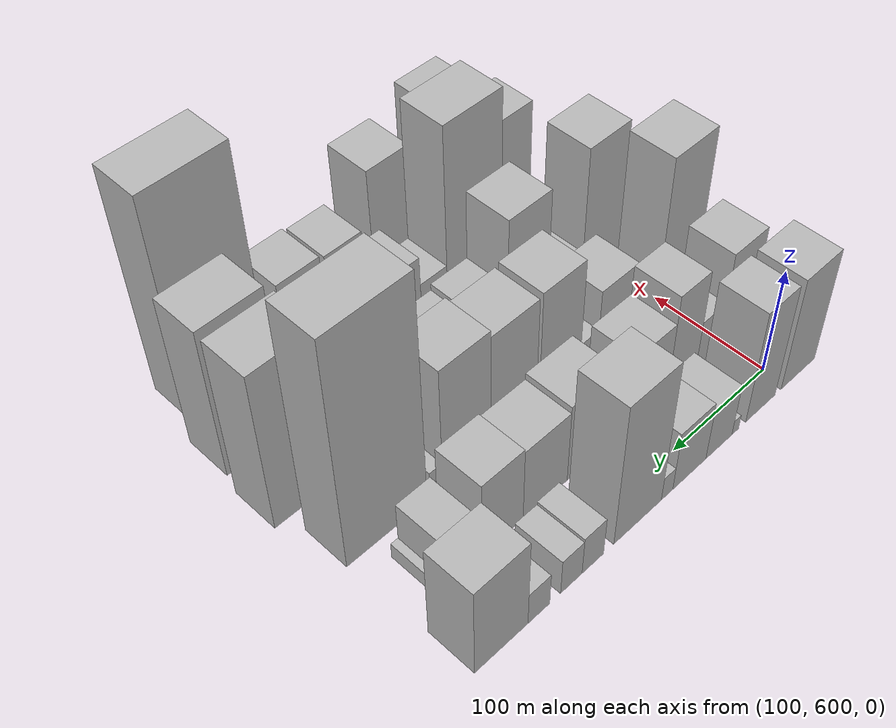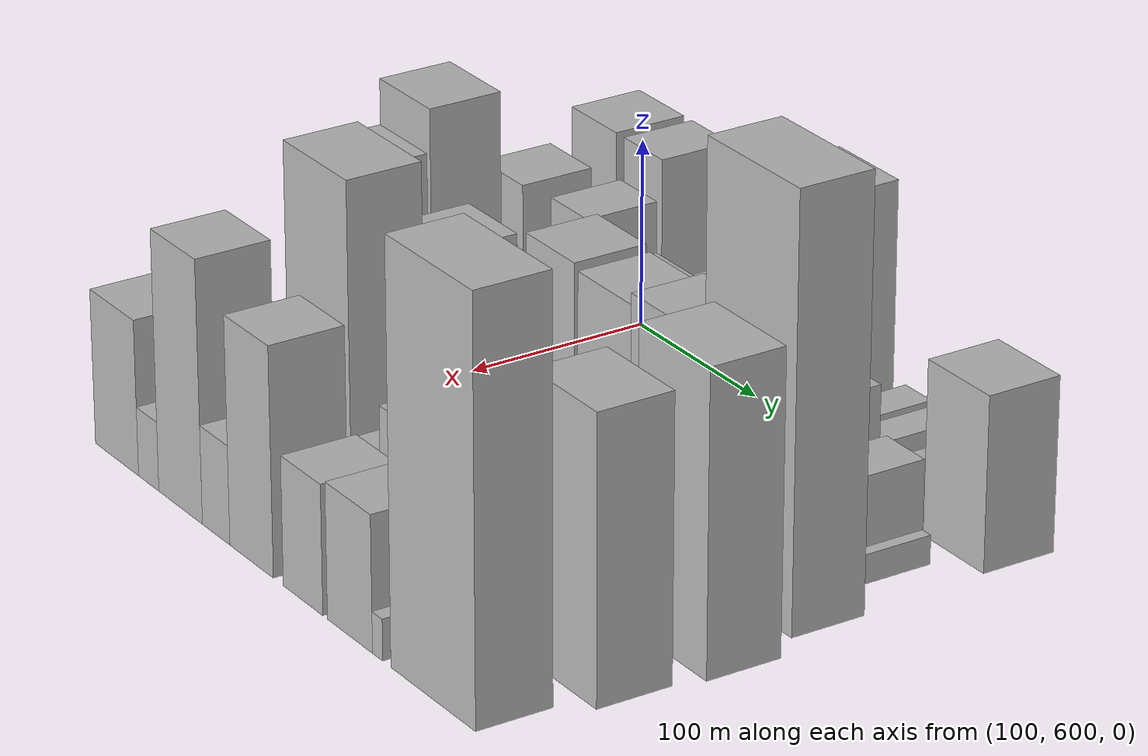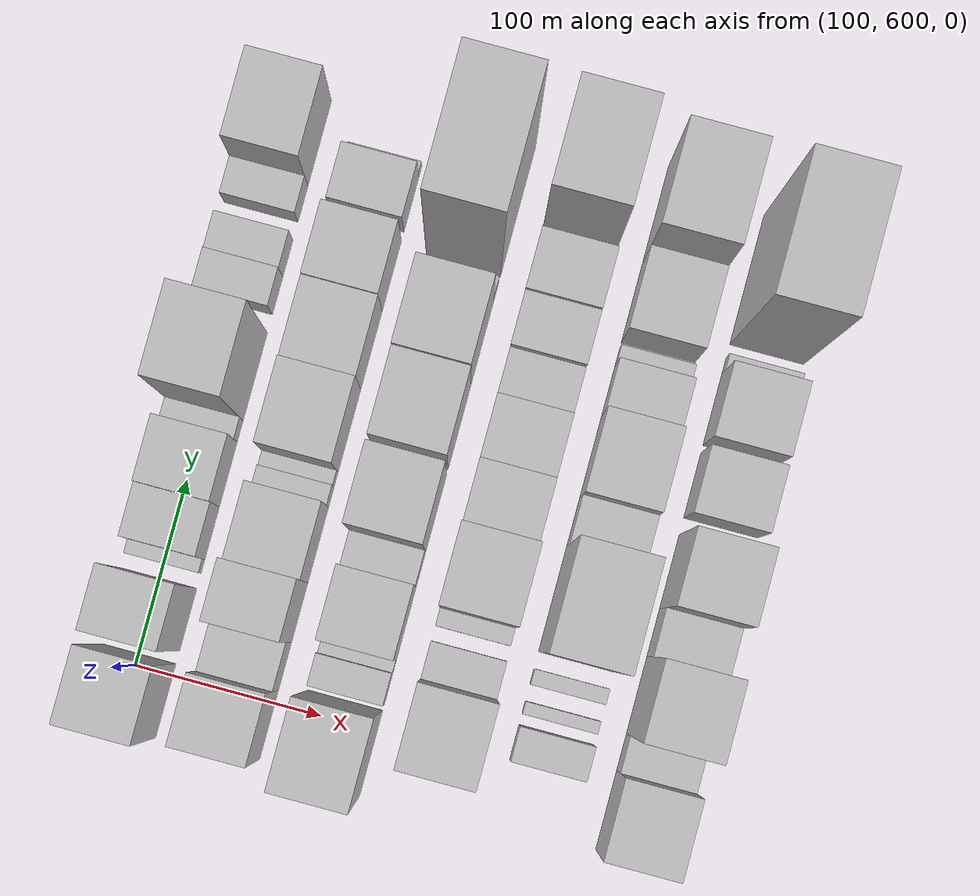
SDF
<sdf version="1.6">
 <world name="default">
  <model name="building_44">
   <static>1</static>
   <pose>100.0000 586.5596 0 0.000000 0.000000 0.000000</pose>
   <link name="link">
    <pose>0 0 55.50 0 0 0</pose>
    <collision name="collision"><geometry><box><size>40.0000 39.7444 111.0000</size></box></geometry></collision>
    <visual name="visual">
     <cast_shadows>0</cast_shadows>
     <geometry><box><size>40.0000 39.7444 111.0000</size></box></geometry>
     <material>
      <script>
       <uri>model://HANNAS_wall/materials/scripts</uri>
       <uri>model://HANNAS_wall/materials/textures</uri>
       <name>vrc/HANNAS_wall</name>
      </script>
     </material>
    </visual>
   </link>
  </model>
  <model name="building_45">
   <static>1</static>
   <pose>100.0000 630.1969 0 0.000000 0.000000 0.000000</pose>
   <link name="link">
    <pose>0 0 55.50 0 0 0</pose>
    <collision name="collision"><geometry><box><size>40.0000 33.5303 111.0000</size></box></geometry></collision>
    <visual name="visual">
     <cast_shadows>0</cast_shadows>
     <geometry><box><size>40.0000 33.5303 111.0000</size></box></geometry>
     <material>
      <script>
       <uri>model://HANNAS_wall/materials/scripts</uri>
       <uri>model://HANNAS_wall/materials/textures</uri>
       <name>vrc/HANNAS_wall</name>
      </script>
     </material>
    </visual>
   </link>
  </model>
  <model name="building_46">
   <static>1</static>
   <pose>100.0000 658.6842 0 0.000000 0.000000 0.000000</pose>
   <link name="link">
    <pose>0 0 7.50 0 0 0</pose>
    <collision name="collision"><geometry><box><size>40.0000 7.4443 15.0000</size></box></geometry></collision>
    <visual name="visual">
     <cast_shadows>0</cast_shadows>
     <geometry><box><size>40.0000 7.4443 15.0000</size></box></geometry>
     <material>
      <script>
       <uri>model://HANNAS_wall/materials/scripts</uri>
       <uri>model://HANNAS_wall/materials/textures</uri>
       <name>vrc/HANNAS_wall</name>
      </script>
     </material>
    </visual>
   </link>
  </model>
  <model name="building_47">
   <static>1</static>
   <pose>100.0000 676.6349 0 0.000000 0.000000 0.000000</pose>
   <link name="link">
    <pose>0 0 27.00 0 0 0</pose>
    <collision name="collision"><geometry><box><size>40.0000 28.4571 54.0000</size></box></geometry></collision>
    <visual name="visual">
     <cast_shadows>0</cast_shadows>
     <geometry><box><size>40.0000 28.4571 54.0000</size></box></geometry>
     <material>
      <script>
       <uri>model://HANNAS_wall/materials/scripts</uri>
       <uri>model://HANNAS_wall/materials/textures</uri>
       <name>vrc/HANNAS_wall</name>
      </script>
     </material>
    </visual>
   </link>
  </model>
  <model name="building_48">
   <static>1</static>
   <pose>100.0000 708.3799 0 0.000000 0.000000 0.000000</pose>
   <link name="link">
    <pose>0 0 30.00 0 0 0</pose>
    <collision name="collision"><geometry><box><size>40.0000 35.0328 60.0000</size></box></geometry></collision>
    <visual name="visual">
     <cast_shadows>0</cast_shadows>
     <geometry><box><size>40.0000 35.0328 60.0000</size></box></geometry>
     <material>
      <script>
       <uri>model://HANNAS_wall/materials/scripts</uri>
       <uri>model://HANNAS_wall/materials/textures</uri>
       <name>vrc/HANNAS_wall</name>
      </script>
     </material>
    </visual>
   </link>
  </model>
  <model name="building_49">
   <static>1</static>
   <pose>100.0000 731.8077 0 0.000000 0.000000 0.000000</pose>
   <link name="link">
    <pose>0 0 12.00 0 0 0</pose>
    <collision name="collision"><geometry><box><size>40.0000 11.8228 24.0000</size></box></geometry></collision>
    <visual name="visual">
     <cast_shadows>0</cast_shadows>
     <geometry><box><size>40.0000 11.8228 24.0000</size></box></geometry>
     <material>
      <script>
       <uri>model://HANNAS_wall/materials/scripts</uri>
       <uri>model://HANNAS_wall/materials/textures</uri>
       <name>vrc/HANNAS_wall</name>
      </script>
     </material>
    </visual>
   </link>
  </model>
  <model name="building_50">
   <static>1</static>
   <pose>100.0000 761.4835 0 0.000000 0.000000 0.000000</pose>
   <link name="link">
    <pose>0 0 70.50 0 0 0</pose>
    <collision name="collision"><geometry><box><size>40.0000 47.5287 141.0000</size></box></geometry></collision>
    <visual name="visual">
     <cast_shadows>0</cast_shadows>
     <geometry><box><size>40.0000 47.5287 141.0000</size></box></geometry>
     <material>
      <script>
       <uri>model://HANNAS_wall/materials/scripts</uri>
       <uri>model://HANNAS_wall/materials/textures</uri>
       <name>vrc/HANNAS_wall</name>
      </script>
     </material>
    </visual>
   </link>
  </model>
  <model name="building_51">
   <static>1</static>
   <pose>100.0000 805.5571 0 0.000000 0.000000 0.000000</pose>
   <link name="link">
    <pose>0 0 19.50 0 0 0</pose>
    <collision name="collision"><geometry><box><size>40.0000 20.6185 39.0000</size></box></geometry></collision>
    <visual name="visual">
     <cast_shadows>0</cast_shadows>
     <geometry><box><size>40.0000 20.6185 39.0000</size></box></geometry>
     <material>
      <script>
       <uri>model://HANNAS_wall/materials/scripts</uri>
       <uri>model://HANNAS_wall/materials/textures</uri>
       <name>vrc/HANNAS_wall</name>
      </script>
     </material>
    </visual>
   </link>
  </model>
  <model name="building_52">
   <static>1</static>
   <pose>100.0000 825.8743 0 0.000000 0.000000 0.000000</pose>
   <link name="link">
    <pose>0 0 18.00 0 0 0</pose>
    <collision name="collision"><geometry><box><size>40.0000 20.0160 36.0000</size></box></geometry></collision>
    <visual name="visual">
     <cast_shadows>0</cast_shadows>
     <geometry><box><size>40.0000 20.0160 36.0000</size></box></geometry>
     <material>
      <script>
       <uri>model://HANNAS_wall/materials/scripts</uri>
       <uri>model://HANNAS_wall/materials/textures</uri>
       <name>vrc/HANNAS_wall</name>
      </script>
     </material>
    </visual>
   </link>
  </model>
  <model name="building_53">
   <static>1</static>
   <pose>100.0000 855.7499 0 0.000000 0.000000 0.000000</pose>
   <link name="link">
    <pose>0 0 16.50 0 0 0</pose>
    <collision name="collision"><geometry><box><size>40.0000 19.7351 33.0000</size></box></geometry></collision>
    <visual name="visual">
     <cast_shadows>0</cast_shadows>
     <geometry><box><size>40.0000 19.7351 33.0000</size></box></geometry>
     <material>
      <script>
       <uri>model://HANNAS_wall/materials/scripts</uri>
       <uri>model://HANNAS_wall/materials/textures</uri>
       <name>vrc/HANNAS_wall</name>
      </script>
     </material>
    </visual>
   </link>
  </model>
  <model name="building_54">
   <static>1</static>
   <pose>100.0000 888.9737 0 0.000000 0.000000 0.000000</pose>
   <link name="link">
    <pose>0 0 45.00 0 0 0</pose>
    <collision name="collision"><geometry><box><size>40.0000 46.7126 90.0000</size></box></geometry></collision>
    <visual name="visual">
     <cast_shadows>0</cast_shadows>
     <geometry><box><size>40.0000 46.7126 90.0000</size></box></geometry>
     <material>
      <script>
       <uri>model://HANNAS_wall/materials/scripts</uri>
       <uri>model://HANNAS_wall/materials/textures</uri>
       <name>vrc/HANNAS_wall</name>
      </script>
     </material>
    </visual>
   </link>
  </model>
  <model name="building_98">
   <static>1</static>
   <pose>155.0000 588.6050 0 0.000000 0.000000 0.000000</pose>
   <link name="link">
    <pose>0 0 48.00 0 0 0</pose>
    <collision name="collision"><geometry><box><size>40.0000 37.1389 96.0000</size></box></geometry></collision>
    <visual name="visual">
     <cast_shadows>0</cast_shadows>
     <geometry><box><size>40.0000 37.1389 96.0000</size></box></geometry>
     <material>
      <script>
       <uri>model://HANNAS_wall/materials/scripts</uri>
       <uri>model://HANNAS_wall/materials/textures</uri>
       <name>vrc/HANNAS_wall</name>
      </script>
     </material>
    </visual>
   </link>
  </model>
  <model name="building_99">
   <static>1</static>
   <pose>155.0000 620.0133 0 0.000000 0.000000 0.000000</pose>
   <link name="link">
    <pose>0 0 24.00 0 0 0</pose>
    <collision name="collision"><geometry><box><size>40.0000 25.6776 48.0000</size></box></geometry></collision>
    <visual name="visual">
     <cast_shadows>0</cast_shadows>
     <geometry><box><size>40.0000 25.6776 48.0000</size></box></geometry>
     <material>
      <script>
       <uri>model://HANNAS_wall/materials/scripts</uri>
       <uri>model://HANNAS_wall/materials/textures</uri>
       <name>vrc/HANNAS_wall</name>
      </script>
     </material>
    </visual>
   </link>
  </model>
  <model name="building_100">
   <static>1</static>
   <pose>155.0000 648.8126 0 0.000000 0.000000 0.000000</pose>
   <link name="link">
    <pose>0 0 49.50 0 0 0</pose>
    <collision name="collision"><geometry><box><size>40.0000 31.9209 99.0000</size></box></geometry></collision>
    <visual name="visual">
     <cast_shadows>0</cast_shadows>
     <geometry><box><size>40.0000 31.9209 99.0000</size></box></geometry>
     <material>
      <script>
       <uri>model://HANNAS_wall/materials/scripts</uri>
       <uri>model://HANNAS_wall/materials/textures</uri>
       <name>vrc/HANNAS_wall</name>
      </script>
     </material>
    </visual>
   </link>
  </model>
  <model name="building_101">
   <static>1</static>
   <pose>155.0000 685.0090 0 0.000000 0.000000 0.000000</pose>
   <link name="link">
    <pose>0 0 36.00 0 0 0</pose>
    <collision name="collision"><geometry><box><size>40.0000 40.4718 72.0000</size></box></geometry></collision>
    <visual name="visual">
     <cast_shadows>0</cast_shadows>
     <geometry><box><size>40.0000 40.4718 72.0000</size></box></geometry>
     <material>
      <script>
       <uri>model://HANNAS_wall/materials/scripts</uri>
       <uri>model://HANNAS_wall/materials/textures</uri>
       <name>vrc/HANNAS_wall</name>
      </script>
     </material>
    </visual>
   </link>
  </model>
  <model name="building_102">
   <static>1</static>
   <pose>155.0000 710.7977 0 0.000000 0.000000 0.000000</pose>
   <link name="link">
    <pose>0 0 12.00 0 0 0</pose>
    <collision name="collision"><geometry><box><size>40.0000 11.1055 24.0000</size></box></geometry></collision>
    <visual name="visual">
     <cast_shadows>0</cast_shadows>
     <geometry><box><size>40.0000 11.1055 24.0000</size></box></geometry>
     <material>
      <script>
       <uri>model://HANNAS_wall/materials/scripts</uri>
       <uri>model://HANNAS_wall/materials/textures</uri>
       <name>vrc/HANNAS_wall</name>
      </script>
     </material>
    </visual>
   </link>
  </model>
  <model name="building_103">
   <static>1</static>
   <pose>155.0000 720.4035 0 0.000000 0.000000 0.000000</pose>
   <link name="link">
    <pose>0 0 9.00 0 0 0</pose>
    <collision name="collision"><geometry><box><size>40.0000 8.1062 18.0000</size></box></geometry></collision>
    <visual name="visual">
     <cast_shadows>0</cast_shadows>
     <geometry><box><size>40.0000 8.1062 18.0000</size></box></geometry>
     <material>
      <script>
       <uri>model://HANNAS_wall/materials/scripts</uri>
       <uri>model://HANNAS_wall/materials/textures</uri>
       <name>vrc/HANNAS_wall</name>
      </script>
     </material>
    </visual>
   </link>
  </model>
  <model name="building_104">
   <static>1</static>
   <pose>155.0000 746.8345 0 0.000000 0.000000 0.000000</pose>
   <link name="link">
    <pose>0 0 39.00 0 0 0</pose>
    <collision name="collision"><geometry><box><size>40.0000 44.7556 78.0000</size></box></geometry></collision>
    <visual name="visual">
     <cast_shadows>0</cast_shadows>
     <geometry><box><size>40.0000 44.7556 78.0000</size></box></geometry>
     <material>
      <script>
       <uri>model://HANNAS_wall/materials/scripts</uri>
       <uri>model://HANNAS_wall/materials/textures</uri>
       <name>vrc/HANNAS_wall</name>
      </script>
     </material>
    </visual>
   </link>
  </model>
  <model name="building_105">
   <static>1</static>
   <pose>155.0000 790.4888 0 0.000000 0.000000 0.000000</pose>
   <link name="link">
    <pose>0 0 36.00 0 0 0</pose>
    <collision name="collision"><geometry><box><size>40.0000 42.5531 72.0000</size></box></geometry></collision>
    <visual name="visual">
     <cast_shadows>0</cast_shadows>
     <geometry><box><size>40.0000 42.5531 72.0000</size></box></geometry>
     <material>
      <script>
       <uri>model://HANNAS_wall/materials/scripts</uri>
       <uri>model://HANNAS_wall/materials/textures</uri>
       <name>vrc/HANNAS_wall</name>
      </script>
     </material>
    </visual>
   </link>
  </model>
  <model name="building_106">
   <static>1</static>
   <pose>155.0000 830.9979 0 0.000000 0.000000 0.000000</pose>
   <link name="link">
    <pose>0 0 37.50 0 0 0</pose>
    <collision name="collision"><geometry><box><size>40.0000 38.4652 75.0000</size></box></geometry></collision>
    <visual name="visual">
     <cast_shadows>0</cast_shadows>
     <geometry><box><size>40.0000 38.4652 75.0000</size></box></geometry>
     <material>
      <script>
       <uri>model://HANNAS_wall/materials/scripts</uri>
       <uri>model://HANNAS_wall/materials/textures</uri>
       <name>vrc/HANNAS_wall</name>
      </script>
     </material>
    </visual>
   </link>
  </model>
  <model name="building_107">
   <static>1</static>
   <pose>155.0000 870.0633 0 0.000000 0.000000 0.000000</pose>
   <link name="link">
    <pose>0 0 25.50 0 0 0</pose>
    <collision name="collision"><geometry><box><size>40.0000 29.6656 51.0000</size></box></geometry></collision>
    <visual name="visual">
     <cast_shadows>0</cast_shadows>
     <geometry><box><size>40.0000 29.6656 51.0000</size></box></geometry>
     <material>
      <script>
       <uri>model://HANNAS_wall/materials/scripts</uri>
       <uri>model://HANNAS_wall/materials/textures</uri>
       <name>vrc/HANNAS_wall</name>
      </script>
     </material>
    </visual>
   </link>
  </model>
  <model name="building_108">
   <static>1</static>
   <pose>155.0000 888.1436 0 0.000000 0.000000 0.000000</pose>
   <link name="link">
    <pose>0 0 7.50 0 0 0</pose>
    <collision name="collision"><geometry><box><size>40.0000 6.4952 15.0000</size></box></geometry></collision>
    <visual name="visual">
     <cast_shadows>0</cast_shadows>
     <geometry><box><size>40.0000 6.4952 15.0000</size></box></geometry>
     <material>
      <script>
       <uri>model://HANNAS_wall/materials/scripts</uri>
       <uri>model://HANNAS_wall/materials/textures</uri>
       <name>vrc/HANNAS_wall</name>
      </script>
     </material>
    </visual>
   </link>
  </model>
  <model name="building_149">
   <static>1</static>
   <pose>210.0000 588.2005 0 0.000000 0.000000 0.000000</pose>
   <link name="link">
    <pose>0 0 75.00 0 0 0</pose>
    <collision name="collision"><geometry><box><size>40.0000 46.0205 150.0000</size></box></geometry></collision>
    <visual name="visual">
     <cast_shadows>0</cast_shadows>
     <geometry><box><size>40.0000 46.0205 150.0000</size></box></geometry>
     <material>
      <script>
       <uri>model://HANNAS_wall/materials/scripts</uri>
       <uri>model://HANNAS_wall/materials/textures</uri>
       <name>vrc/HANNAS_wall</name>
      </script>
     </material>
    </visual>
   </link>
  </model>
  <model name="building_150">
   <static>1</static>
   <pose>210.0000 622.8026 0 0.000000 0.000000 0.000000</pose>
   <link name="link">
    <pose>0 0 16.50 0 0 0</pose>
    <collision name="collision"><geometry><box><size>40.0000 17.1838 33.0000</size></box></geometry></collision>
    <visual name="visual">
     <cast_shadows>0</cast_shadows>
     <geometry><box><size>40.0000 17.1838 33.0000</size></box></geometry>
     <material>
      <script>
       <uri>model://HANNAS_wall/materials/scripts</uri>
       <uri>model://HANNAS_wall/materials/textures</uri>
       <name>vrc/HANNAS_wall</name>
      </script>
     </material>
    </visual>
   </link>
  </model>
  <model name="building_151">
   <static>1</static>
   <pose>210.0000 634.8335 0 0.000000 0.000000 0.000000</pose>
   <link name="link">
    <pose>0 0 7.50 0 0 0</pose>
    <collision name="collision"><geometry><box><size>40.0000 6.8779 15.0000</size></box></geometry></collision>
    <visual name="visual">
     <cast_shadows>0</cast_shadows>
     <geometry><box><size>40.0000 6.8779 15.0000</size></box></geometry>
     <material>
      <script>
       <uri>model://HANNAS_wall/materials/scripts</uri>
       <uri>model://HANNAS_wall/materials/textures</uri>
       <name>vrc/HANNAS_wall</name>
      </script>
     </material>
    </visual>
   </link>
  </model>
  <model name="building_152">
   <static>1</static>
   <pose>210.0000 657.7443 0 0.000000 0.000000 0.000000</pose>
   <link name="link">
    <pose>0 0 36.00 0 0 0</pose>
    <collision name="collision"><geometry><box><size>40.0000 38.9437 72.0000</size></box></geometry></collision>
    <visual name="visual">
     <cast_shadows>0</cast_shadows>
     <geometry><box><size>40.0000 38.9437 72.0000</size></box></geometry>
     <material>
      <script>
       <uri>model://HANNAS_wall/materials/scripts</uri>
       <uri>model://HANNAS_wall/materials/textures</uri>
       <name>vrc/HANNAS_wall</name>
      </script>
     </material>
    </visual>
   </link>
  </model>
  <model name="building_153">
   <static>1</static>
   <pose>210.0000 686.6774 0 0.000000 0.000000 0.000000</pose>
   <link name="link">
    <pose>0 0 16.50 0 0 0</pose>
    <collision name="collision"><geometry><box><size>40.0000 18.9224 33.0000</size></box></geometry></collision>
    <visual name="visual">
     <cast_shadows>0</cast_shadows>
     <geometry><box><size>40.0000 18.9224 33.0000</size></box></geometry>
     <material>
      <script>
       <uri>model://HANNAS_wall/materials/scripts</uri>
       <uri>model://HANNAS_wall/materials/textures</uri>
       <name>vrc/HANNAS_wall</name>
      </script>
     </material>
    </visual>
   </link>
  </model>
  <model name="building_154">
   <static>1</static>
   <pose>210.0000 716.9581 0 0.000000 0.000000 0.000000</pose>
   <link name="link">
    <pose>0 0 58.50 0 0 0</pose>
    <collision name="collision"><geometry><box><size>40.0000 41.6389 117.0000</size></box></geometry></collision>
    <visual name="visual">
     <cast_shadows>0</cast_shadows>
     <geometry><box><size>40.0000 41.6389 117.0000</size></box></geometry>
     <material>
      <script>
       <uri>model://HANNAS_wall/materials/scripts</uri>
       <uri>model://HANNAS_wall/materials/textures</uri>
       <name>vrc/HANNAS_wall</name>
      </script>
     </material>
    </visual>
   </link>
  </model>
  <model name="building_155">
   <static>1</static>
   <pose>210.0000 763.1526 0 0.000000 0.000000 0.000000</pose>
   <link name="link">
    <pose>0 0 57.00 0 0 0</pose>
    <collision name="collision"><geometry><box><size>40.0000 44.7502 114.0000</size></box></geometry></collision>
    <visual name="visual">
     <cast_shadows>0</cast_shadows>
     <geometry><box><size>40.0000 44.7502 114.0000</size></box></geometry>
     <material>
      <script>
       <uri>model://HANNAS_wall/materials/scripts</uri>
       <uri>model://HANNAS_wall/materials/textures</uri>
       <name>vrc/HANNAS_wall</name>
      </script>
     </material>
    </visual>
   </link>
  </model>
  <model name="building_156">
   <static>1</static>
   <pose>210.0000 808.2455 0 0.000000 0.000000 0.000000</pose>
   <link name="link">
    <pose>0 0 60.00 0 0 0</pose>
    <collision name="collision"><geometry><box><size>40.0000 45.4355 120.0000</size></box></geometry></collision>
    <visual name="visual">
     <cast_shadows>0</cast_shadows>
     <geometry><box><size>40.0000 45.4355 120.0000</size></box></geometry>
     <material>
      <script>
       <uri>model://HANNAS_wall/materials/scripts</uri>
       <uri>model://HANNAS_wall/materials/textures</uri>
       <name>vrc/HANNAS_wall</name>
      </script>
     </material>
    </visual>
   </link>
  </model>
  <model name="building_157">
   <static>1</static>
   <pose>210.0000 836.6992 0 0.000000 0.000000 0.000000</pose>
   <link name="link">
    <pose>0 0 13.50 0 0 0</pose>
    <collision name="collision"><geometry><box><size>40.0000 11.4720 27.0000</size></box></geometry></collision>
    <visual name="visual">
     <cast_shadows>0</cast_shadows>
     <geometry><box><size>40.0000 11.4720 27.0000</size></box></geometry>
     <material>
      <script>
       <uri>model://HANNAS_wall/materials/scripts</uri>
       <uri>model://HANNAS_wall/materials/textures</uri>
       <name>vrc/HANNAS_wall</name>
      </script>
     </material>
    </visual>
   </link>
  </model>
  <model name="building_158">
   <static>1</static>
   <pose>210.0000 880.8894 0 0.000000 0.000000 0.000000</pose>
   <link name="link">
    <pose>0 0 109.50 0 0 0</pose>
    <collision name="collision"><geometry><box><size>40.0000 70.9084 219.0000</size></box></geometry></collision>
    <visual name="visual">
     <cast_shadows>0</cast_shadows>
     <geometry><box><size>40.0000 70.9084 219.0000</size></box></geometry>
     <material>
      <script>
       <uri>model://HANNAS_wall/materials/scripts</uri>
       <uri>model://HANNAS_wall/materials/textures</uri>
       <name>vrc/HANNAS_wall</name>
      </script>
     </material>
    </visual>
   </link>
  </model>
  <model name="building_201">
   <static>1</static>
   <pose>265.0000 611.3526 0 0.000000 0.000000 0.000000</pose>
   <link name="link">
    <pose>0 0 69.00 0 0 0</pose>
    <collision name="collision"><geometry><box><size>40.0000 42.6612 138.0000</size></box></geometry></collision>
    <visual name="visual">
     <cast_shadows>0</cast_shadows>
     <geometry><box><size>40.0000 42.6612 138.0000</size></box></geometry>
     <material>
      <script>
       <uri>model://HANNAS_wall/materials/scripts</uri>
       <uri>model://HANNAS_wall/materials/textures</uri>
       <name>vrc/HANNAS_wall</name>
      </script>
     </material>
    </visual>
   </link>
  </model>
  <model name="building_202">
   <static>1</static>
   <pose>265.0000 642.6169 0 0.000000 0.000000 0.000000</pose>
   <link name="link">
    <pose>0 0 19.50 0 0 0</pose>
    <collision name="collision"><geometry><box><size>40.0000 19.8674 39.0000</size></box></geometry></collision>
    <visual name="visual">
     <cast_shadows>0</cast_shadows>
     <geometry><box><size>40.0000 19.8674 39.0000</size></box></geometry>
     <material>
      <script>
       <uri>model://HANNAS_wall/materials/scripts</uri>
       <uri>model://HANNAS_wall/materials/textures</uri>
       <name>vrc/HANNAS_wall</name>
      </script>
     </material>
    </visual>
   </link>
  </model>
  <model name="building_203">
   <static>1</static>
   <pose>265.0000 665.3311 0 0.000000 0.000000 0.000000</pose>
   <link name="link">
    <pose>0 0 10.50 0 0 0</pose>
    <collision name="collision"><geometry><box><size>40.0000 9.5609 21.0000</size></box></geometry></collision>
    <visual name="visual">
     <cast_shadows>0</cast_shadows>
     <geometry><box><size>40.0000 9.5609 21.0000</size></box></geometry>
     <material>
      <script>
       <uri>model://HANNAS_wall/materials/scripts</uri>
       <uri>model://HANNAS_wall/materials/textures</uri>
       <name>vrc/HANNAS_wall</name>
      </script>
     </material>
    </visual>
   </link>
  </model>
  <model name="building_204">
   <static>1</static>
   <pose>265.0000 691.1576 0 0.000000 0.000000 0.000000</pose>
   <link name="link">
    <pose>0 0 63.00 0 0 0</pose>
    <collision name="collision"><geometry><box><size>40.0000 42.0922 126.0000</size></box></geometry></collision>
    <visual name="visual">
     <cast_shadows>0</cast_shadows>
     <geometry><box><size>40.0000 42.0922 126.0000</size></box></geometry>
     <material>
      <script>
       <uri>model://HANNAS_wall/materials/scripts</uri>
       <uri>model://HANNAS_wall/materials/textures</uri>
       <name>vrc/HANNAS_wall</name>
      </script>
     </material>
    </visual>
   </link>
  </model>
  <model name="building_205">
   <static>1</static>
   <pose>265.0000 729.8925 0 0.000000 0.000000 0.000000</pose>
   <link name="link">
    <pose>0 0 31.50 0 0 0</pose>
    <collision name="collision"><geometry><box><size>40.0000 35.3775 63.0000</size></box></geometry></collision>
    <visual name="visual">
     <cast_shadows>0</cast_shadows>
     <geometry><box><size>40.0000 35.3775 63.0000</size></box></geometry>
     <material>
      <script>
       <uri>model://HANNAS_wall/materials/scripts</uri>
       <uri>model://HANNAS_wall/materials/textures</uri>
       <name>vrc/HANNAS_wall</name>
      </script>
     </material>
    </visual>
   </link>
  </model>
  <model name="building_206">
   <static>1</static>
   <pose>265.0000 764.6005 0 0.000000 0.000000 0.000000</pose>
   <link name="link">
    <pose>0 0 28.50 0 0 0</pose>
    <collision name="collision"><geometry><box><size>40.0000 34.0385 57.0000</size></box></geometry></collision>
    <visual name="visual">
     <cast_shadows>0</cast_shadows>
     <geometry><box><size>40.0000 34.0385 57.0000</size></box></geometry>
     <material>
      <script>
       <uri>model://HANNAS_wall/materials/scripts</uri>
       <uri>model://HANNAS_wall/materials/textures</uri>
       <name>vrc/HANNAS_wall</name>
      </script>
     </material>
    </visual>
   </link>
  </model>
  <model name="building_207">
   <static>1</static>
   <pose>265.0000 794.1872 0 0.000000 0.000000 0.000000</pose>
   <link name="link">
    <pose>0 0 22.50 0 0 0</pose>
    <collision name="collision"><geometry><box><size>40.0000 25.1349 45.0000</size></box></geometry></collision>
    <visual name="visual">
     <cast_shadows>0</cast_shadows>
     <geometry><box><size>40.0000 25.1349 45.0000</size></box></geometry>
     <material>
      <script>
       <uri>model://HANNAS_wall/materials/scripts</uri>
       <uri>model://HANNAS_wall/materials/textures</uri>
       <name>vrc/HANNAS_wall</name>
      </script>
     </material>
    </visual>
   </link>
  </model>
  <model name="building_208">
   <static>1</static>
   <pose>265.0000 821.1233 0 0.000000 0.000000 0.000000</pose>
   <link name="link">
    <pose>0 0 28.50 0 0 0</pose>
    <collision name="collision"><geometry><box><size>40.0000 28.7373 57.0000</size></box></geometry></collision>
    <visual name="visual">
     <cast_shadows>0</cast_shadows>
     <geometry><box><size>40.0000 28.7373 57.0000</size></box></geometry>
     <material>
      <script>
       <uri>model://HANNAS_wall/materials/scripts</uri>
       <uri>model://HANNAS_wall/materials/textures</uri>
       <name>vrc/HANNAS_wall</name>
      </script>
     </material>
    </visual>
   </link>
  </model>
  <model name="building_209">
   <static>1</static>
   <pose>265.0000 851.7327 0 0.000000 0.000000 0.000000</pose>
   <link name="link">
    <pose>0 0 31.50 0 0 0</pose>
    <collision name="collision"><geometry><box><size>40.0000 32.4816 63.0000</size></box></geometry></collision>
    <visual name="visual">
     <cast_shadows>0</cast_shadows>
     <geometry><box><size>40.0000 32.4816 63.0000</size></box></geometry>
     <material>
      <script>
       <uri>model://HANNAS_wall/materials/scripts</uri>
       <uri>model://HANNAS_wall/materials/textures</uri>
       <name>vrc/HANNAS_wall</name>
      </script>
     </material>
    </visual>
   </link>
  </model>
  <model name="building_210">
   <static>1</static>
   <pose>265.0000 901.7139 0 0.000000 0.000000 0.000000</pose>
   <link name="link">
    <pose>0 0 76.50 0 0 0</pose>
    <collision name="collision"><geometry><box><size>40.0000 55.4809 153.0000</size></box></geometry></collision>
    <visual name="visual">
     <cast_shadows>0</cast_shadows>
     <geometry><box><size>40.0000 55.4809 153.0000</size></box></geometry>
     <material>
      <script>
       <uri>model://HANNAS_wall/materials/scripts</uri>
       <uri>model://HANNAS_wall/materials/textures</uri>
       <name>vrc/HANNAS_wall</name>
      </script>
     </material>
    </visual>
   </link>
  </model>
  <model name="building_250">
   <static>1</static>
   <pose>320.0000 613.3538 0 0.000000 0.000000 0.000000</pose>
   <link name="link">
    <pose>0 0 16.50 0 0 0</pose>
    <collision name="collision"><geometry><box><size>40.0000 18.4726 33.0000</size></box></geometry></collision>
    <visual name="visual">
     <cast_shadows>0</cast_shadows>
     <geometry><box><size>40.0000 18.4726 33.0000</size></box></geometry>
     <material>
      <script>
       <uri>model://HANNAS_wall/materials/scripts</uri>
       <uri>model://HANNAS_wall/materials/textures</uri>
       <name>vrc/HANNAS_wall</name>
      </script>
     </material>
    </visual>
   </link>
  </model>
  <model name="building_251">
   <static>1</static>
   <pose>320.0000 631.9292 0 0.000000 0.000000 0.000000</pose>
   <link name="link">
    <pose>0 0 7.50 0 0 0</pose>
    <collision name="collision"><geometry><box><size>40.0000 6.6781 15.0000</size></box></geometry></collision>
    <visual name="visual">
     <cast_shadows>0</cast_shadows>
     <geometry><box><size>40.0000 6.6781 15.0000</size></box></geometry>
     <material>
      <script>
       <uri>model://HANNAS_wall/materials/scripts</uri>
       <uri>model://HANNAS_wall/materials/textures</uri>
       <name>vrc/HANNAS_wall</name>
      </script>
     </material>
    </visual>
   </link>
  </model>
  <model name="building_252">
   <static>1</static>
   <pose>320.0000 648.4012 0 0.000000 0.000000 0.000000</pose>
   <link name="link">
    <pose>0 0 9.00 0 0 0</pose>
    <collision name="collision"><geometry><box><size>40.0000 8.2660 18.0000</size></box></geometry></collision>
    <visual name="visual">
     <cast_shadows>0</cast_shadows>
     <geometry><box><size>40.0000 8.2660 18.0000</size></box></geometry>
     <material>
      <script>
       <uri>model://HANNAS_wall/materials/scripts</uri>
       <uri>model://HANNAS_wall/materials/textures</uri>
       <name>vrc/HANNAS_wall</name>
      </script>
     </material>
    </visual>
   </link>
  </model>
  <model name="building_253">
   <static>1</static>
   <pose>320.0000 689.6084 0 0.000000 0.000000 0.000000</pose>
   <link name="link">
    <pose>0 0 88.50 0 0 0</pose>
    <collision name="collision"><geometry><box><size>40.0000 56.1483 177.0000</size></box></geometry></collision>
    <visual name="visual">
     <cast_shadows>0</cast_shadows>
     <geometry><box><size>40.0000 56.1483 177.0000</size></box></geometry>
     <material>
      <script>
       <uri>model://HANNAS_wall/materials/scripts</uri>
       <uri>model://HANNAS_wall/materials/textures</uri>
       <name>vrc/HANNAS_wall</name>
      </script>
     </material>
    </visual>
   </link>
  </model>
  <model name="building_254">
   <static>1</static>
   <pose>320.0000 730.6986 0 0.000000 0.000000 0.000000</pose>
   <link name="link">
    <pose>0 0 24.00 0 0 0</pose>
    <collision name="collision"><geometry><box><size>40.0000 26.0322 48.0000</size></box></geometry></collision>
    <visual name="visual">
     <cast_shadows>0</cast_shadows>
     <geometry><box><size>40.0000 26.0322 48.0000</size></box></geometry>
     <material>
      <script>
       <uri>model://HANNAS_wall/materials/scripts</uri>
       <uri>model://HANNAS_wall/materials/textures</uri>
       <name>vrc/HANNAS_wall</name>
      </script>
     </material>
    </visual>
   </link>
  </model>
  <model name="building_255">
   <static>1</static>
   <pose>320.0000 765.7961 0 0.000000 0.000000 0.000000</pose>
   <link name="link">
    <pose>0 0 37.50 0 0 0</pose>
    <collision name="collision"><geometry><box><size>40.0000 44.1627 75.0000</size></box></geometry></collision>
    <visual name="visual">
     <cast_shadows>0</cast_shadows>
     <geometry><box><size>40.0000 44.1627 75.0000</size></box></geometry>
     <material>
      <script>
       <uri>model://HANNAS_wall/materials/scripts</uri>
       <uri>model://HANNAS_wall/materials/textures</uri>
       <name>vrc/HANNAS_wall</name>
      </script>
     </material>
    </visual>
   </link>
  </model>
  <model name="building_256">
   <static>1</static>
   <pose>320.0000 801.6058 0 0.000000 0.000000 0.000000</pose>
   <link name="link">
    <pose>0 0 25.50 0 0 0</pose>
    <collision name="collision"><geometry><box><size>40.0000 27.4565 51.0000</size></box></geometry></collision>
    <visual name="visual">
     <cast_shadows>0</cast_shadows>
     <geometry><box><size>40.0000 27.4565 51.0000</size></box></geometry>
     <material>
      <script>
       <uri>model://HANNAS_wall/materials/scripts</uri>
       <uri>model://HANNAS_wall/materials/textures</uri>
       <name>vrc/HANNAS_wall</name>
      </script>
     </material>
    </visual>
   </link>
  </model>
  <model name="building_257">
   <static>1</static>
   <pose>320.0000 820.4212 0 0.000000 0.000000 0.000000</pose>
   <link name="link">
    <pose>0 0 10.50 0 0 0</pose>
    <collision name="collision"><geometry><box><size>40.0000 10.1744 21.0000</size></box></geometry></collision>
    <visual name="visual">
     <cast_shadows>0</cast_shadows>
     <geometry><box><size>40.0000 10.1744 21.0000</size></box></geometry>
     <material>
      <script>
       <uri>model://HANNAS_wall/materials/scripts</uri>
       <uri>model://HANNAS_wall/materials/textures</uri>
       <name>vrc/HANNAS_wall</name>
      </script>
     </material>
    </visual>
   </link>
  </model>
  <model name="building_258">
   <static>1</static>
   <pose>320.0000 849.9756 0 0.000000 0.000000 0.000000</pose>
   <link name="link">
    <pose>0 0 36.00 0 0 0</pose>
    <collision name="collision"><geometry><box><size>40.0000 42.9343 72.0000</size></box></geometry></collision>
    <visual name="visual">
     <cast_shadows>0</cast_shadows>
     <geometry><box><size>40.0000 42.9343 72.0000</size></box></geometry>
     <material>
      <script>
       <uri>model://HANNAS_wall/materials/scripts</uri>
       <uri>model://HANNAS_wall/materials/textures</uri>
       <name>vrc/HANNAS_wall</name>
      </script>
     </material>
    </visual>
   </link>
  </model>
  <model name="building_259">
   <static>1</static>
   <pose>320.0000 898.1015 0 0.000000 0.000000 0.000000</pose>
   <link name="link">
    <pose>0 0 72.00 0 0 0</pose>
    <collision name="collision"><geometry><box><size>40.0000 53.3176 144.0000</size></box></geometry></collision>
    <visual name="visual">
     <cast_shadows>0</cast_shadows>
     <geometry><box><size>40.0000 53.3176 144.0000</size></box></geometry>
     <material>
      <script>
       <uri>model://HANNAS_wall/materials/scripts</uri>
       <uri>model://HANNAS_wall/materials/textures</uri>
       <name>vrc/HANNAS_wall</name>
      </script>
     </material>
    </visual>
   </link>
  </model>
  <model name="building_294">
   <static>1</static>
   <pose>375.0000 591.8479 0 0.000000 0.000000 0.000000</pose>
   <link name="link">
    <pose>0 0 40.50 0 0 0</pose>
    <collision name="collision"><geometry><box><size>40.0000 42.3203 81.0000</size></box></geometry></collision>
    <visual name="visual">
     <cast_shadows>0</cast_shadows>
     <geometry><box><size>40.0000 42.3203 81.0000</size></box></geometry>
     <material>
      <script>
       <uri>model://HANNAS_wall/materials/scripts</uri>
       <uri>model://HANNAS_wall/materials/textures</uri>
       <name>vrc/HANNAS_wall</name>
      </script>
     </material>
    </visual>
   </link>
  </model>
  <model name="building_295">
   <static>1</static>
   <pose>375.0000 622.7852 0 0.000000 0.000000 0.000000</pose>
   <link name="link">
    <pose>0 0 18.00 0 0 0</pose>
    <collision name="collision"><geometry><box><size>40.0000 19.5543 36.0000</size></box></geometry></collision>
    <visual name="visual">
     <cast_shadows>0</cast_shadows>
     <geometry><box><size>40.0000 19.5543 36.0000</size></box></geometry>
     <material>
      <script>
       <uri>model://HANNAS_wall/materials/scripts</uri>
       <uri>model://HANNAS_wall/materials/textures</uri>
       <name>vrc/HANNAS_wall</name>
      </script>
     </material>
    </visual>
   </link>
  </model>
  <model name="building_296">
   <static>1</static>
   <pose>375.0000 653.2763 0 0.000000 0.000000 0.000000</pose>
   <link name="link">
    <pose>0 0 67.50 0 0 0</pose>
    <collision name="collision"><geometry><box><size>40.0000 41.4279 135.0000</size></box></geometry></collision>
    <visual name="visual">
     <cast_shadows>0</cast_shadows>
     <geometry><box><size>40.0000 41.4279 135.0000</size></box></geometry>
     <material>
      <script>
       <uri>model://HANNAS_wall/materials/scripts</uri>
       <uri>model://HANNAS_wall/materials/textures</uri>
       <name>vrc/HANNAS_wall</name>
      </script>
     </material>
    </visual>
   </link>
  </model>
  <model name="building_297">
   <static>1</static>
   <pose>375.0000 686.7915 0 0.000000 0.000000 0.000000</pose>
   <link name="link">
    <pose>0 0 25.50 0 0 0</pose>
    <collision name="collision"><geometry><box><size>40.0000 25.6024 51.0000</size></box></geometry></collision>
    <visual name="visual">
     <cast_shadows>0</cast_shadows>
     <geometry><box><size>40.0000 25.6024 51.0000</size></box></geometry>
     <material>
      <script>
       <uri>model://HANNAS_wall/materials/scripts</uri>
       <uri>model://HANNAS_wall/materials/textures</uri>
       <name>vrc/HANNAS_wall</name>
      </script>
     </material>
    </visual>
   </link>
  </model>
  <model name="building_298">
   <static>1</static>
   <pose>375.0000 719.4848 0 0.000000 0.000000 0.000000</pose>
   <link name="link">
    <pose>0 0 58.50 0 0 0</pose>
    <collision name="collision"><geometry><box><size>40.0000 39.7843 117.0000</size></box></geometry></collision>
    <visual name="visual">
     <cast_shadows>0</cast_shadows>
     <geometry><box><size>40.0000 39.7843 117.0000</size></box></geometry>
     <material>
      <script>
       <uri>model://HANNAS_wall/materials/scripts</uri>
       <uri>model://HANNAS_wall/materials/textures</uri>
       <name>vrc/HANNAS_wall</name>
      </script>
     </material>
    </visual>
   </link>
  </model>
  <model name="building_299">
   <static>1</static>
   <pose>375.0000 765.9684 0 0.000000 0.000000 0.000000</pose>
   <link name="link">
    <pose>0 0 33.00 0 0 0</pose>
    <collision name="collision"><geometry><box><size>40.0000 35.1828 66.0000</size></box></geometry></collision>
    <visual name="visual">
     <cast_shadows>0</cast_shadows>
     <geometry><box><size>40.0000 35.1828 66.0000</size></box></geometry>
     <material>
      <script>
       <uri>model://HANNAS_wall/materials/scripts</uri>
       <uri>model://HANNAS_wall/materials/textures</uri>
       <name>vrc/HANNAS_wall</name>
      </script>
     </material>
    </visual>
   </link>
  </model>
  <model name="building_300">
   <static>1</static>
   <pose>375.0000 807.1417 0 0.000000 0.000000 0.000000</pose>
   <link name="link">
    <pose>0 0 34.50 0 0 0</pose>
    <collision name="collision"><geometry><box><size>40.0000 39.1637 69.0000</size></box></geometry></collision>
    <visual name="visual">
     <cast_shadows>0</cast_shadows>
     <geometry><box><size>40.0000 39.1637 69.0000</size></box></geometry>
     <material>
      <script>
       <uri>model://HANNAS_wall/materials/scripts</uri>
       <uri>model://HANNAS_wall/materials/textures</uri>
       <name>vrc/HANNAS_wall</name>
      </script>
     </material>
    </visual>
   </link>
  </model>
  <model name="building_301">
   <static>1</static>
   <pose>375.0000 831.0893 0 0.000000 0.000000 0.000000</pose>
   <link name="link">
    <pose>0 0 10.50 0 0 0</pose>
    <collision name="collision"><geometry><box><size>40.0000 8.7315 21.0000</size></box></geometry></collision>
    <visual name="visual">
     <cast_shadows>0</cast_shadows>
     <geometry><box><size>40.0000 8.7315 21.0000</size></box></geometry>
     <material>
      <script>
       <uri>model://HANNAS_wall/materials/scripts</uri>
       <uri>model://HANNAS_wall/materials/textures</uri>
       <name>vrc/HANNAS_wall</name>
      </script>
     </material>
    </visual>
   </link>
  </model>
  <model name="building_302">
   <static>1</static>
   <pose>375.0000 877.7171 0 0.000000 0.000000 0.000000</pose>
   <link name="link">
    <pose>0 0 105.00 0 0 0</pose>
    <collision name="collision"><geometry><box><size>40.0000 70.5241 210.0000</size></box></geometry></collision>
    <visual name="visual">
     <cast_shadows>0</cast_shadows>
     <geometry><box><size>40.0000 70.5241 210.0000</size></box></geometry>
     <material>
      <script>
       <uri>model://HANNAS_wall/materials/scripts</uri>
       <uri>model://HANNAS_wall/materials/textures</uri>
       <name>vrc/HANNAS_wall</name>
      </script>
     </material>
    </visual>
   </link>
  </model>
 </world>
</sdf>
